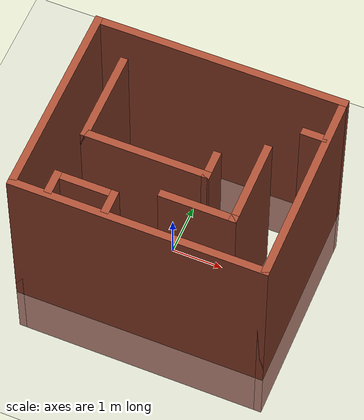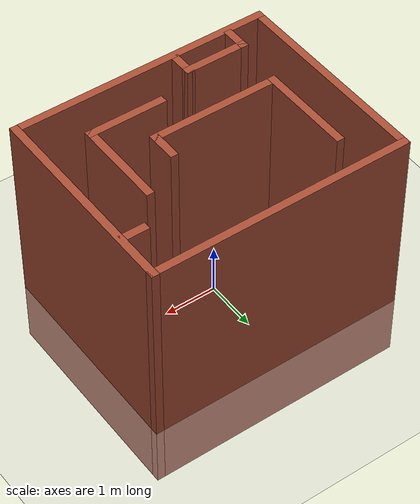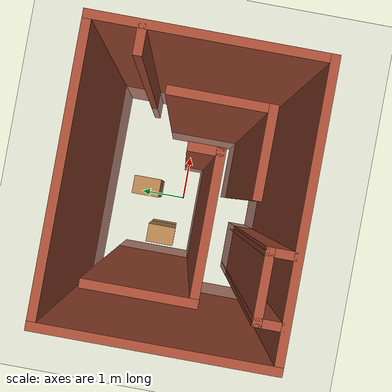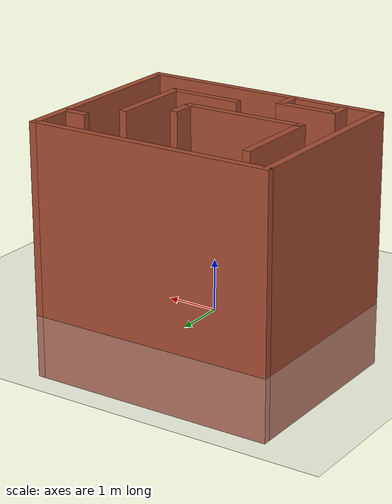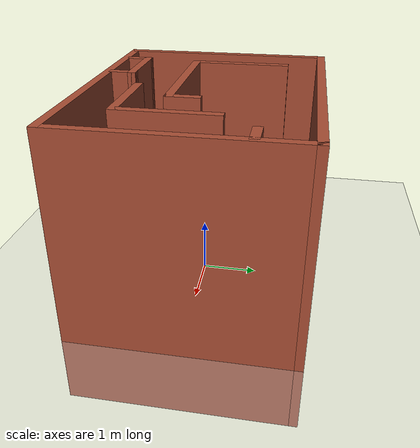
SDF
<sdf version="1.7">
 <world name="default">
  <light name="sun" type="directional">
   <pose>0 0 10 0 -0 0</pose>
   <diffuse>0.8 0.8 0.8 1</diffuse>
   <specular>0.2 0.2 0.2 1</specular>
   <attenuation>
    <range>1000</range>
    <constant>0.9</constant>
    <linear>0.01</linear>
    <quadratic>0.001</quadratic>
   </attenuation>
   <direction>-0.5 0.1 -0.9</direction>
   <spot><inner_angle>0</inner_angle><outer_angle>0</outer_angle><falloff>0</falloff></spot>
  </light>
  <model name="ground_plane">
   <static>1</static>
   <link name="link">
    <collision name="collision">
     <geometry><plane><normal>0 0 1</normal><size>100 100</size></plane></geometry>
     <surface>
      <contact><collide_bitmask>65535</collide_bitmask></contact>
      <friction><ode><mu>100</mu><mu2>50</mu2></ode></friction>
     </surface>
    </collision>
    <visual name="visual">
     <cast_shadows>0</cast_shadows>
     <geometry><plane><normal>0 0 1</normal><size>100 100</size></plane></geometry>
     <material>
      <script><uri>file://media/materials/scripts/gazebo.material</uri><name>Gazebo/Grey</name></script>
     </material>
    </visual>
   </link>
  </model>
  <gravity>0 0 -9.8</gravity>
  <magnetic_field>6e-06 2.3e-05 -4.2e-05</magnetic_field>
  <atmosphere type="adiabatic"/>
  <physics type="ode">
   <max_step_size>0.001</max_step_size>
   <real_time_factor>1</real_time_factor>
   <real_time_update_rate>1000</real_time_update_rate>
  </physics>
  <scene><ambient>0.4 0.4 0.4 1</ambient><background>0.7 0.7 0.7 1</background><shadows>1</shadows></scene>
  <audio><device>default</device></audio>
  <spherical_coordinates>
   <surface_model>EARTH_WGS84</surface_model>
   <latitude_deg>0</latitude_deg>
   <longitude_deg>0</longitude_deg>
   <elevation>0</elevation>
   <heading_deg>0</heading_deg>
  </spherical_coordinates>
  <model name="inferno-A">
   <pose>0.12345 0.35 0 0 -0 0</pose>
   <link name="Wall_0">
    <collision name="Wall_0_Collision">
     <geometry><box><size>4 0.15 5</size></box></geometry>
     <pose>0 0 1.25 0 -0 0</pose>
    </collision>
    <visual name="Wall_0_Visual">
     <pose>0 0 1.25 0 -0 0</pose>
     <geometry><box><size>4 0.15 5</size></box></geometry>
     <material>
      <script><uri>file://media/materials/scripts/gazebo.material</uri><name>Gazebo/Bricks</name></script>
      <ambient>1 1 1 1</ambient>
     </material>
     <meta><layer>0</layer></meta>
    </visual>
    <pose>-2.425 -0.3175 0 0 -0 -1.5708</pose>
   </link>
   <link name="Wall_1">
    <collision name="Wall_1_Collision">
     <geometry><box><size>5 0.15 5</size></box></geometry>
     <pose>0 0 1.25 0 -0 0</pose>
    </collision>
    <visual name="Wall_1_Visual">
     <pose>0 0 1.25 0 -0 0</pose>
     <geometry><box><size>5 0.15 5</size></box></geometry>
     <material>
      <script><uri>file://media/materials/scripts/gazebo.material</uri><name>Gazebo/Bricks</name></script>
      <ambient>1 1 1 1</ambient>
     </material>
     <meta><layer>0</layer></meta>
    </visual>
    <pose>-0 -2.2425 0 0 -0 0</pose>
   </link>
   <link name="Wall_17">
    <collision name="Wall_17_Collision">
     <geometry><box><size>0.5 0.15 5</size></box></geometry>
     <pose>0 0 1.25 0 -0 0</pose>
    </collision>
    <visual name="Wall_17_Visual">
     <pose>0 0 1.25 0 -0 0</pose>
     <geometry><box><size>0.5 0.15 5</size></box></geometry>
     <material>
      <script><uri>file://media/materials/scripts/gazebo.material</uri><name>Gazebo/Bricks</name></script>
      <ambient>1 1 1 1</ambient>
     </material>
     <meta><layer>0</layer></meta>
    </visual>
    <pose>-1.745 -1.9675 0 0 -0 1.5708</pose>
   </link>
   <link name="Wall_18">
    <collision name="Wall_18_Collision">
     <geometry><box><size>1.25 0.15 5</size></box></geometry>
     <pose>0 0 1.25 0 -0 0</pose>
    </collision>
    <visual name="Wall_18_Visual">
     <pose>0 0 1.25 0 -0 0</pose>
     <geometry><box><size>1.25 0.15 5</size></box></geometry>
     <material>
      <script><uri>file://media/materials/scripts/gazebo.material</uri><name>Gazebo/Bricks</name></script>
      <ambient>1 1 1 1</ambient>
     </material>
     <meta><layer>0</layer></meta>
    </visual>
    <pose>-1.195 -1.7925 0 0 -0 0</pose>
   </link>
   <link name="Wall_19">
    <collision name="Wall_19_Collision">
     <geometry><box><size>0.5 0.15 5</size></box></geometry>
     <pose>0 0 1.25 0 -0 0</pose>
    </collision>
    <visual name="Wall_19_Visual">
     <pose>0 0 1.25 0 -0 0</pose>
     <geometry><box><size>0.5 0.15 5</size></box></geometry>
     <material>
      <script><uri>file://media/materials/scripts/gazebo.material</uri><name>Gazebo/Bricks</name></script>
      <ambient>1 1 1 1</ambient>
     </material>
     <meta><layer>0</layer></meta>
    </visual>
    <pose>-0.645 -1.9675 0 0 -0 -1.5708</pose>
   </link>
   <link name="Wall_2">
    <collision name="Wall_2_Collision">
     <geometry><box><size>4 0.15 5</size></box></geometry>
     <pose>0 0 1.25 0 -0 0</pose>
    </collision>
    <visual name="Wall_2_Visual">
     <pose>0 0 1.25 0 -0 0</pose>
     <geometry><box><size>4 0.15 5</size></box></geometry>
     <material>
      <script><uri>file://media/materials/scripts/gazebo.material</uri><name>Gazebo/Bricks</name></script>
      <ambient>1 1 1 1</ambient>
     </material>
     <meta><layer>0</layer></meta>
    </visual>
    <pose>2.425 -0.3175 0 0 -0 1.5708</pose>
   </link>
   <link name="Wall_25">
    <collision name="Wall_25_Collision">
     <geometry><box><size>0.5 0.15 5</size></box></geometry>
     <pose>0 0 1.25 0 -0 0</pose>
    </collision>
    <visual name="Wall_25_Visual">
     <pose>0 0 1.25 0 -0 0</pose>
     <geometry><box><size>0.5 0.15 5</size></box></geometry>
     <material>
      <script><uri>file://media/materials/scripts/gazebo.material</uri><name>Gazebo/Bricks</name></script>
      <ambient>1 1 1 1</ambient>
     </material>
     <meta><layer>0</layer></meta>
    </visual>
    <pose>2.18 0.7475 0 0 -0 3.14159</pose>
   </link>
   <link name="Wall_29">
    <collision name="Wall_29_Collision">
     <geometry><box><size>1.85 0.15 5</size></box></geometry>
     <pose>0 0 1.25 0 -0 0</pose>
    </collision>
    <visual name="Wall_29_Visual">
     <pose>0 0 1.25 0 -0 0</pose>
     <geometry><box><size>1.85 0.15 5</size></box></geometry>
     <material>
      <script><uri>file://media/materials/scripts/gazebo.material</uri><name>Gazebo/Bricks</name></script>
      <ambient>1 1 1 1</ambient>
     </material>
     <meta><layer>0</layer></meta>
    </visual>
    <pose>-1.635 0.0675 0 0 -0 -1.5708</pose>
   </link>
   <link name="Wall_3">
    <collision name="Wall_3_Collision">
     <geometry><box><size>5 0.15 5</size></box></geometry>
     <pose>0 0 1.25 0 -0 0</pose>
    </collision>
    <visual name="Wall_3_Visual">
     <pose>0 0 1.25 0 -0 0</pose>
     <geometry><box><size>5 0.15 5</size></box></geometry>
     <material>
      <script><uri>file://media/materials/scripts/gazebo.material</uri><name>Gazebo/Bricks</name></script>
      <ambient>1 1 1 1</ambient>
     </material>
     <meta><layer>0</layer></meta>
    </visual>
    <pose>-0 1.6075 0 0 -0 3.14159</pose>
   </link>
   <link name="Wall_30">
    <collision name="Wall_30_Collision">
     <geometry><box><size>2.5 0.15 5</size></box></geometry>
     <pose>0 0 1.25 0 -0 0</pose>
    </collision>
    <visual name="Wall_30_Visual">
     <pose>0 0 1.25 0 -0 0</pose>
     <geometry><box><size>2.5 0.15 5</size></box></geometry>
     <material>
      <script><uri>file://media/materials/scripts/gazebo.material</uri><name>Gazebo/Bricks</name></script>
      <ambient>1 1 1 1</ambient>
     </material>
     <meta><layer>0</layer></meta>
    </visual>
    <pose>-0.46 -0.7825 0 0 -0 0</pose>
   </link>
   <link name="Wall_32">
    <collision name="Wall_32_Collision">
     <geometry><box><size>0.6 0.15 5</size></box></geometry>
     <pose>0 0 1.25 0 -0 0</pose>
    </collision>
    <visual name="Wall_32_Visual">
     <pose>0 0 1.25 0 -0 0</pose>
     <geometry><box><size>0.6 0.15 5</size></box></geometry>
     <material>
      <script><uri>file://media/materials/scripts/gazebo.material</uri><name>Gazebo/Bricks</name></script>
      <ambient>1 1 1 1</ambient>
     </material>
     <meta><layer>0</layer></meta>
    </visual>
    <pose>0.715 -0.5575 0 0 -0 1.5708</pose>
   </link>
   <link name="Wall_34">
    <collision name="Wall_34_Collision">
     <geometry><box><size>1.5 0.15 5</size></box></geometry>
     <pose>0 0 1.25 0 -0 0</pose>
    </collision>
    <visual name="Wall_34_Visual">
     <pose>0 0 1.25 0 -0 0</pose>
     <geometry><box><size>1.5 0.15 5</size></box></geometry>
     <material>
      <script><uri>file://media/materials/scripts/gazebo.material</uri><name>Gazebo/Bricks</name></script>
      <ambient>1 1 1 1</ambient>
     </material>
     <meta><layer>0</layer></meta>
    </visual>
    <pose>0.83 -1.4525 0 0 -0 3.14159</pose>
   </link>
   <link name="Wall_36">
    <collision name="Wall_36_Collision">
     <geometry><box><size>1.75 0.15 5</size></box></geometry>
     <pose>0 0 1.25 0 -0 0</pose>
    </collision>
    <visual name="Wall_36_Visual">
     <pose>0 0 1.25 0 -0 0</pose>
     <geometry><box><size>1.75 0.15 5</size></box></geometry>
     <material>
      <script><uri>file://media/materials/scripts/gazebo.material</uri><name>Gazebo/Bricks</name></script>
      <ambient>1 1 1 1</ambient>
     </material>
     <meta><layer>0</layer></meta>
    </visual>
    <pose>1.505 -0.6525 0 0 -0 1.5708</pose>
   </link>
   <link name="Wall_37">
    <collision name="Wall_37_Collision">
     <geometry><box><size>0.4 0.6 1.5</size></box></geometry>
     <pose>0 0 0.25 0 -0 0</pose>
    </collision>
    <visual name="Wall_37_Visual">
     <pose>0 0 0.25 0 -0 0</pose>
     <geometry><box><size>0.4 0.6 1.5</size></box></geometry>
     <material>
      <script><uri>file://media/materials/scripts/gazebo.material</uri><name>Gazebo/Wood</name></script>
      <ambient>1 1 1 1</ambient>
     </material>
     <meta><layer>0</layer></meta>
    </visual>
    <pose>0 0.5 0 0 -0 0</pose>
   </link>
   <link name="Wall_38">
    <collision name="Wall_38_Collision">
     <geometry><box><size>0.4 0.6 1.5</size></box></geometry>
     <pose>0 0 0.25 0 -0 0</pose>
    </collision>
    <visual name="Wall_38_Visual">
     <pose>0 0 0.25 0 -0 0</pose>
     <geometry><box><size>0.4 0.6 1.5</size></box></geometry>
     <material>
      <script><uri>file://media/materials/scripts/gazebo.material</uri><name>Gazebo/Wood</name></script>
      <ambient>1 1 1 1</ambient>
     </material>
     <meta><layer>0</layer></meta>
    </visual>
    <pose>-1 0 0 0 -0 0</pose>
   </link>
   <static>1</static>
   <scale>1 1 0.3</scale>
  </model>
 </world>
</sdf>
